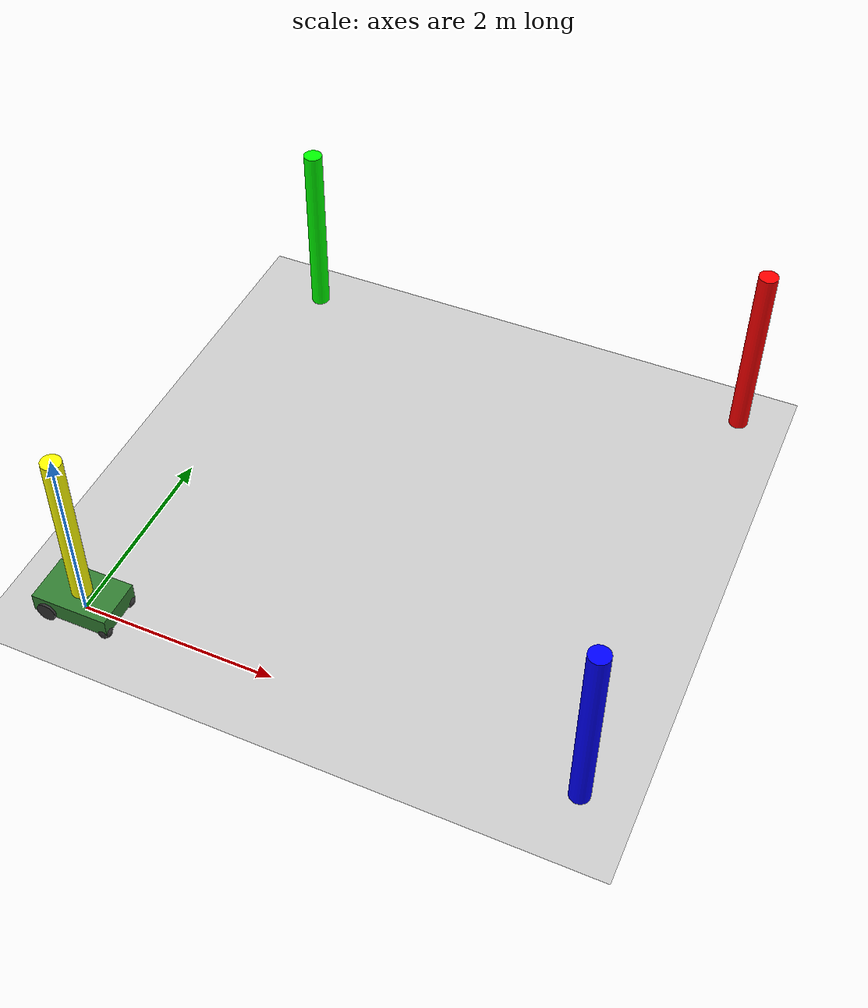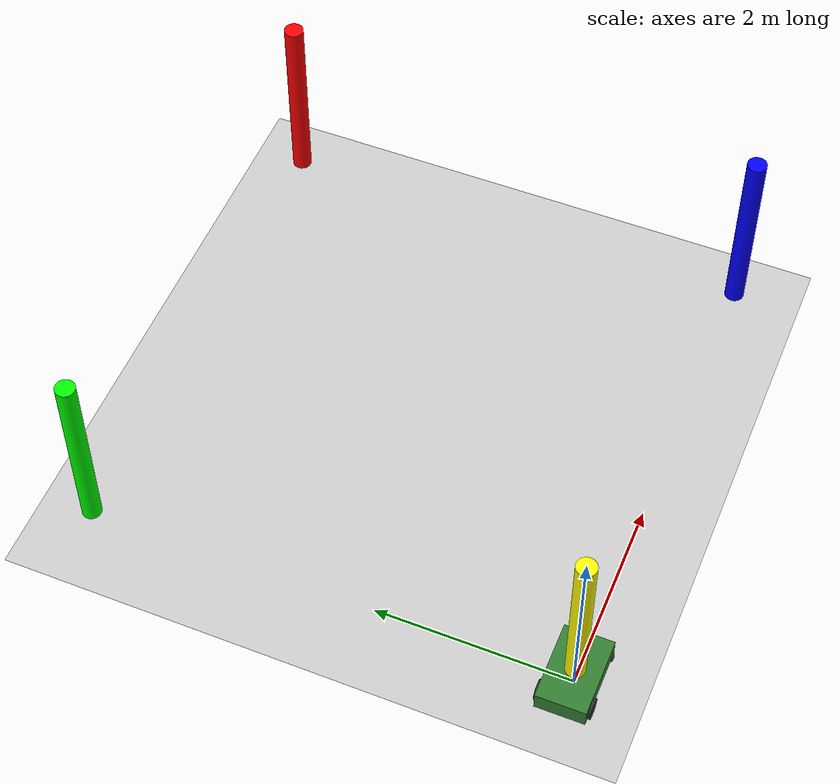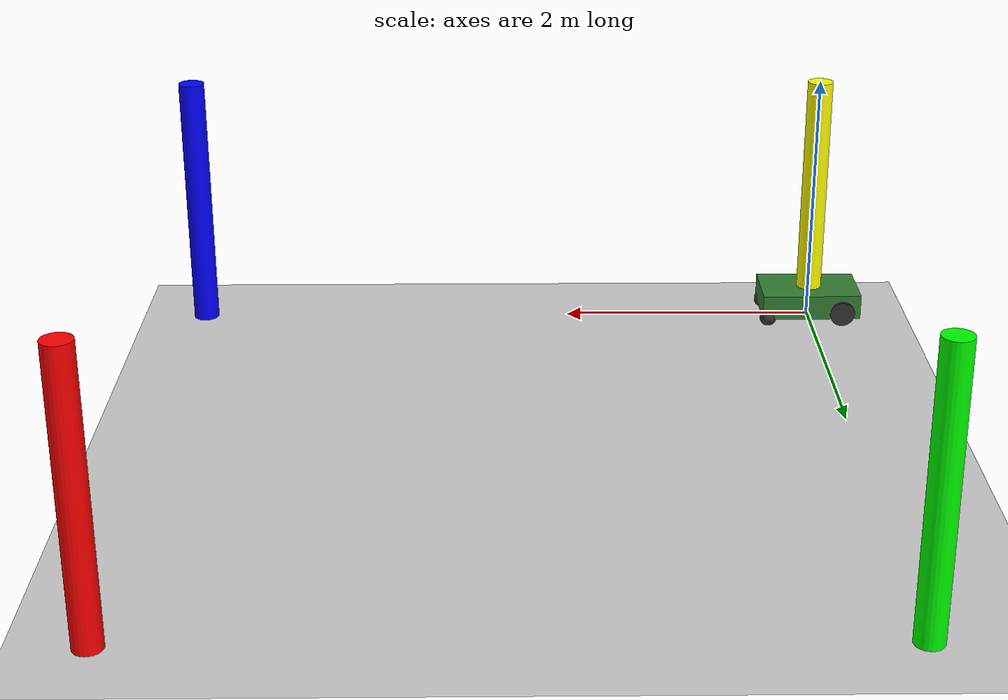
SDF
<?xml version="1.0"?>
<sdf version="1.9">
  <world name="mower_empty">
    <!-- Lower update_rate reduces GUI start/pause flicker on some hosts. -->
    <physics name="1ms" type="ignored">
      <max_step_size>0.001</max_step_size>
      <real_time_factor>1.0</real_time_factor>
      <real_time_update_rate>250</real_time_update_rate>
    </physics>
    <plugin filename="gz-sim-physics-system" name="gz::sim::systems::Physics"></plugin>
    <plugin filename="gz-sim-scene-broadcaster-system" name="gz::sim::systems::SceneBroadcaster"></plugin>
    <plugin filename="gz-sim-user-commands-system" name="gz::sim::systems::UserCommands"></plugin>
    <plugin filename="gz-sim-sensors-system" name="gz::sim::systems::Sensors">
      <render_engine>ogre2</render_engine>
    </plugin>
    <plugin filename="gz-sim-imu-system" name="gz::sim::systems::Imu"></plugin>

    <!-- Required for NavSat (GPS) sensor: set lat/lon to your test origin. -->
    <spherical_coordinates>
      <surface_model>EARTH_WGS84</surface_model>
      <world_frame_orientation>ENU</world_frame_orientation>
      <latitude_deg>37.0</latitude_deg>
      <longitude_deg>-122.0</longitude_deg>
      <elevation>0</elevation>
      <heading_deg>0</heading_deg>
    </spherical_coordinates>

    <light name="sun" type="directional">
      <cast_shadows>true</cast_shadows>
      <pose>0 0 3 0 0.3 0</pose>
      <diffuse>1 1 1 1</diffuse>
      <specular>0.2 0.2 0.2 1</specular>
      <attenuation><range>1000</range><linear>0.2</linear><constant>0.9</constant><quadratic>0.01</quadratic></attenuation>
      <direction>-0.5 -0.5 -0.9</direction>
    </light>

    <model name="ground_plane">
      <static>true</static>
      <link name="link">
        <collision name="collision">
          <geometry><plane><normal>0 0 1</normal><size>100 100</size></plane></geometry>
          <surface><friction><ode><mu>0.8</mu><mu2>0.8</mu2></ode></friction></surface>
        </collision>
        <visual name="visual">
          <geometry><plane><normal>0 0 1</normal><size>100 100</size></plane></geometry>
          <material><ambient>0.8 0.8 0.8 1</ambient><diffuse>0.8 0.8 0.8 1</diffuse><specular>0.1 0.1 0.1 1</specular></material>
        </visual>
      </link>
    </model>

    <include>
      <uri>package://mower_description/models/mower</uri>
      <name>mower</name>
      <pose>0 0 0 0 0 0</pose>
    </include>

    <model name="wp_marker_5_0">
      <static>true</static>
      <pose>5 0 1.0 0 0 0</pose>
      <link name="link">
        <visual name="visual">
          <geometry>
            <cylinder>
              <radius>0.1</radius>
              <length>2.0</length>
            </cylinder>
          </geometry>
          <material>
            <ambient>0.0 0.0 1.0 1</ambient>
            <diffuse>0.0 0.0 1.0 1</diffuse>
          </material>
        </visual>
      </link>
    </model>

    <model name="wp_marker_5_5">
      <static>true</static>
      <pose>5 5 1.0 0 0 0</pose>
      <link name="link">
        <visual name="visual">
          <geometry>
            <cylinder>
              <radius>0.1</radius>
              <length>2.0</length>
            </cylinder>
          </geometry>
          <material>
            <ambient>1.0 0.0 0.0 1</ambient>
            <diffuse>1.0 0.0 0.0 1</diffuse>
          </material>
        </visual>
      </link>
    </model>

    <model name="wp_marker_0_5">
      <static>true</static>
      <pose>0 5 1.0 0 0 0</pose>
      <link name="link">
        <visual name="visual">
          <geometry>
            <cylinder>
              <radius>0.1</radius>
              <length>2.0</length>
            </cylinder>
          </geometry>
          <material>
            <ambient>0.0 1.0 0.0 1</ambient>
            <diffuse>0.0 1.0 0.0 1</diffuse>
          </material>
        </visual>
      </link>
    </model>

    <model name="wp_marker_0_0">
      <static>true</static>
      <pose>0 0 1.0 0 0 0</pose>
      <link name="link">
        <visual name="visual">
          <geometry>
            <cylinder>
              <radius>0.1</radius>
              <length>2.0</length>
            </cylinder>
          </geometry>
          <material>
            <ambient>1.0 1.0 0.0 1</ambient>
            <diffuse>1.0 1.0 0.0 1</diffuse>
          </material>
        </visual>
      </link>
    </model>
  </world>
</sdf>

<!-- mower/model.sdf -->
<sdf version="1.9">
  <model name="mower">
    <static>false</static>
    <link name="base_link">
      <pose>0 0 0.15 0 0 0</pose>
      <inertial>
        <mass>50</mass>
        <inertia>
          <ixx>2.0</ixx><ixy>0</ixy><ixz>0</ixz>
          <iyy>2.0</iyy><iyz>0</iyz><izz>1.0</izz>
        </inertia>
      </inertial>
      <collision name="base_collision">
        <geometry>
          <box><size>0.8 0.5 0.2</size></box>
        </geometry>
        <surface><friction><ode><mu>0.9</mu><mu2>0.9</mu2></ode></friction></surface>
      </collision>
      <visual name="base_visual">
        <geometry>
          <box><size>0.8 0.5 0.2</size></box>
        </geometry>
        <material><ambient>0.2 0.5 0.2 1</ambient><diffuse>0.2 0.5 0.2 1</diffuse></material>
      </visual>
      <sensor name="ultrasonic_0" type="gpu_lidar">
        <pose>0.35 0.15 0.1 0 0 0.785</pose>
        <topic>/model/mower/ultrasonic/0</topic>
        <update_rate>20</update_rate>
        <lidar>
          <scan><horizontal><samples>3</samples><resolution>1</resolution><min_angle>-0.175</min_angle><max_angle>0.175</max_angle></horizontal></scan>
          <range><min>0.25</min><max>4.0</max><resolution>0.01</resolution></range>
        </lidar>
        <always_on>1</always_on>
        <visualize>true</visualize>
      </sensor>
      <sensor name="ultrasonic_1" type="gpu_lidar">
        <pose>0.4 0 0.1 0 0 0</pose>
        <topic>/model/mower/ultrasonic/1</topic>
        <update_rate>20</update_rate>
        <lidar>
          <scan><horizontal><samples>3</samples><resolution>1</resolution><min_angle>-0.175</min_angle><max_angle>0.175</max_angle></horizontal></scan>
          <range><min>0.25</min><max>4.0</max><resolution>0.01</resolution></range>
        </lidar>
        <always_on>1</always_on>
        <visualize>true</visualize>
      </sensor>
      <sensor name="ultrasonic_2" type="gpu_lidar">
        <pose>0.35 -0.15 0.1 0 0 -0.785</pose>
        <topic>/model/mower/ultrasonic/2</topic>
        <update_rate>20</update_rate>
        <lidar>
          <scan><horizontal><samples>3</samples><resolution>1</resolution><min_angle>-0.175</min_angle><max_angle>0.175</max_angle></horizontal></scan>
          <range><min>0.25</min><max>4.0</max><resolution>0.01</resolution></range>
        </lidar>
        <always_on>1</always_on>
        <visualize>true</visualize>
      </sensor>
      <sensor name="ultrasonic_3" type="gpu_lidar">
        <pose>0 0.25 0.1 0 0 1.5708</pose>
        <topic>/model/mower/ultrasonic/3</topic>
        <update_rate>20</update_rate>
        <lidar>
          <scan><horizontal><samples>3</samples><resolution>1</resolution><min_angle>-0.175</min_angle><max_angle>0.175</max_angle></horizontal></scan>
          <range><min>0.25</min><max>4.0</max><resolution>0.01</resolution></range>
        </lidar>
        <always_on>1</always_on>
        <visualize>true</visualize>
      </sensor>
      <sensor name="ultrasonic_4" type="gpu_lidar">
        <pose>0 -0.25 0.1 0 0 -1.5708</pose>
        <topic>/model/mower/ultrasonic/4</topic>
        <update_rate>20</update_rate>
        <lidar>
          <scan><horizontal><samples>3</samples><resolution>1</resolution><min_angle>-0.175</min_angle><max_angle>0.175</max_angle></horizontal></scan>
          <range><min>0.25</min><max>4.0</max><resolution>0.01</resolution></range>
        </lidar>
        <always_on>1</always_on>
        <visualize>true</visualize>
      </sensor>
      <sensor name="ultrasonic_5" type="gpu_lidar">
        <pose>-0.35 0 0.1 0 0 3.14159</pose>
        <topic>/model/mower/ultrasonic/5</topic>
        <update_rate>20</update_rate>
        <lidar>
          <scan><horizontal><samples>3</samples><resolution>1</resolution><min_angle>-0.175</min_angle><max_angle>0.175</max_angle></horizontal></scan>
          <range><min>0.25</min><max>4.0</max><resolution>0.01</resolution></range>
        </lidar>
        <always_on>1</always_on>
        <visualize>true</visualize>
      </sensor>
      <!-- IMU (optional: for use_ekf:=true). Frame base_link, REP-103. -->
      <sensor name="imu_sensor" type="imu">
        <pose>0 0 0 0 0 0</pose>
        <topic>/model/mower/imu</topic>
        <update_rate>100</update_rate>
        <always_on>1</always_on>
      </sensor>
      <!-- GPS (optional: for use_ekf:=true use_gps:=true). World must define spherical_coordinates. -->
      <sensor name="gps_sensor" type="navsat">
        <pose>0 0 0 0 0 0</pose>
        <topic>/model/mower/gps/fix</topic>
        <update_rate>10</update_rate>
        <always_on>1</always_on>
      </sensor>
    </link>
    <link name="left_wheel">
      <!-- Rear drive wheels: move back along -x -->
      <pose>-0.25 0.25 0.1 0 0 0</pose>
      <inertial>
        <mass>2</mass>
        <inertia>
          <ixx>0.01</ixx><iyy>0.01</iyy><izz>0.01</izz>
        </inertia>
      </inertial>
      <collision name="left_wheel_collision">
        <!-- Rotate cylinder so its axis aligns with the joint (y-axis) -->
        <pose>0 0 0 1.5708 0 0</pose>
        <geometry>
          <cylinder>
            <radius>0.1</radius>
            <length>0.05</length>
          </cylinder>
        </geometry>
        <surface>
          <friction>
            <ode>
              <mu>1.0</mu>
              <mu2>1.0</mu2>
            </ode>
          </friction>
        </surface>
      </collision>
      <visual name="left_wheel_visual">
        <!-- Match visual orientation to collision (wheel lying vertical, rolling around y) -->
        <pose>0 0 0 1.5708 0 0</pose>
        <geometry>
          <cylinder>
            <radius>0.1</radius>
            <length>0.05</length>
          </cylinder>
        </geometry>
        <material>
          <ambient>0.1 0.1 0.1 1</ambient>
          <diffuse>0.2 0.2 0.2 1</diffuse>
        </material>
      </visual>
    </link>
    <joint name="left_wheel_joint" type="revolute">
      <parent>base_link</parent>
      <child>left_wheel</child>
      <axis>
        <xyz>0 1 0</xyz>
        <limit><lower>-1e16</lower><upper>1e16</upper></limit>
        <dynamics><damping>0.1</damping><friction>0.01</friction></dynamics>
      </axis>
    </joint>
    <link name="right_wheel">
      <!-- Rear drive wheels: move back along -x -->
      <pose>-0.25 -0.25 0.1 0 0 0</pose>
      <inertial>
        <mass>2</mass>
        <inertia>
          <ixx>0.01</ixx><iyy>0.01</iyy><izz>0.01</izz>
        </inertia>
      </inertial>
      <collision name="right_wheel_collision">
        <!-- Rotate cylinder so its axis aligns with the joint (y-axis) -->
        <pose>0 0 0 1.5708 0 0</pose>
        <geometry>
          <cylinder>
            <radius>0.1</radius>
            <length>0.05</length>
          </cylinder>
        </geometry>
        <surface>
          <friction>
            <ode>
              <mu>1.0</mu>
              <mu2>1.0</mu2>
            </ode>
          </friction>
        </surface>
      </collision>
      <visual name="right_wheel_visual">
        <!-- Match visual orientation to collision (wheel lying vertical, rolling around y) -->
        <pose>0 0 0 1.5708 0 0</pose>
        <geometry>
          <cylinder>
            <radius>0.1</radius>
            <length>0.05</length>
          </cylinder>
        </geometry>
        <material>
          <ambient>0.1 0.1 0.1 1</ambient>
          <diffuse>0.2 0.2 0.2 1</diffuse>
        </material>
      </visual>
    </link>
    <joint name="right_wheel_joint" type="revolute">
      <parent>base_link</parent>
      <child>right_wheel</child>
      <axis>
        <xyz>0 1 0</xyz>
        <limit><lower>-1e16</lower><upper>1e16</upper></limit>
        <dynamics><damping>0.1</damping><friction>0.01</friction></dynamics>
      </axis>
    </joint>

    <!-- Passive front caster wheels (no drive, fixed joints) -->
    <link name="front_left_caster">
      <pose>0.35 0.20 0.05 0 0 0</pose>
      <inertial>
        <mass>1.0</mass>
        <inertia>
          <ixx>0.001</ixx><iyy>0.001</iyy><izz>0.001</izz>
        </inertia>
      </inertial>
      <collision name="front_left_caster_collision">
        <geometry>
          <sphere>
            <radius>0.07</radius>
          </sphere>
        </geometry>
        <surface>
          <friction>
            <ode>
              <mu>0.6</mu>
              <mu2>0.6</mu2>
            </ode>
          </friction>
        </surface>
      </collision>
      <visual name="front_left_caster_visual">
        <geometry>
          <sphere>
            <radius>0.07</radius>
          </sphere>
        </geometry>
        <material>
          <ambient>0.1 0.1 0.1 1</ambient>
          <diffuse>0.2 0.2 0.2 1</diffuse>
        </material>
      </visual>
    </link>
    <joint name="front_left_caster_joint" type="fixed">
      <parent>base_link</parent>
      <child>front_left_caster</child>
    </joint>

    <link name="front_right_caster">
      <pose>0.35 -0.20 0.05 0 0 0</pose>
      <inertial>
        <mass>1.0</mass>
        <inertia>
          <ixx>0.001</ixx><iyy>0.001</iyy><izz>0.001</izz>
        </inertia>
      </inertial>
      <collision name="front_right_caster_collision">
        <geometry>
          <sphere>
            <radius>0.07</radius>
          </sphere>
        </geometry>
        <surface>
          <friction>
            <ode>
              <mu>0.6</mu>
              <mu2>0.6</mu2>
            </ode>
          </friction>
        </surface>
      </collision>
      <visual name="front_right_caster_visual">
        <geometry>
          <sphere>
            <radius>0.07</radius>
          </sphere>
        </geometry>
        <material>
          <ambient>0.1 0.1 0.1 1</ambient>
          <diffuse>0.2 0.2 0.2 1</diffuse>
        </material>
      </visual>
    </link>
    <joint name="front_right_caster_joint" type="fixed">
      <parent>base_link</parent>
      <child>front_right_caster</child>
    </joint>
    <plugin filename="gz-sim-diff-drive-system" name="gz::sim::systems::DiffDrive">
      <left_joint>left_wheel_joint</left_joint>
      <right_joint>right_wheel_joint</right_joint>
      <wheel_separation>0.5</wheel_separation>
      <wheel_radius>0.1</wheel_radius>
      <odom_publish_frequency>50</odom_publish_frequency>
      <topic>/model/mower/cmd_vel</topic>
      <odom_topic>/model/mower/odometry</odom_topic>
      <frame_id>odom</frame_id>
      <child_frame_id>base_link</child_frame_id>
    </plugin>
  </model>
</sdf>
